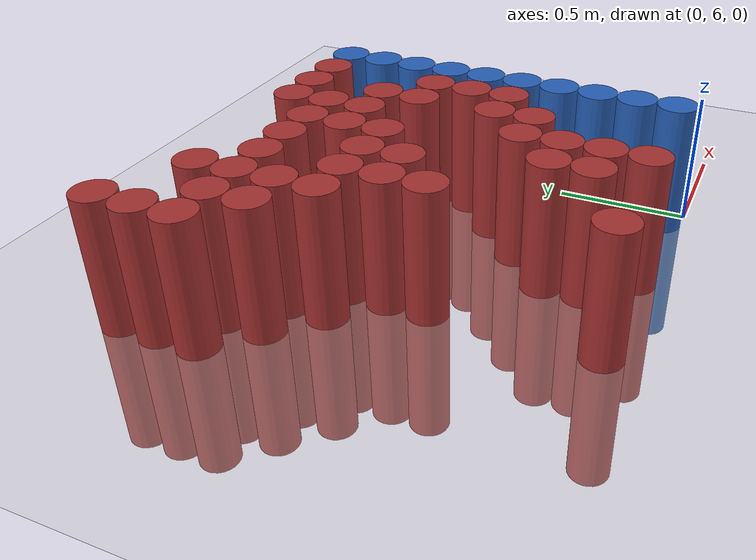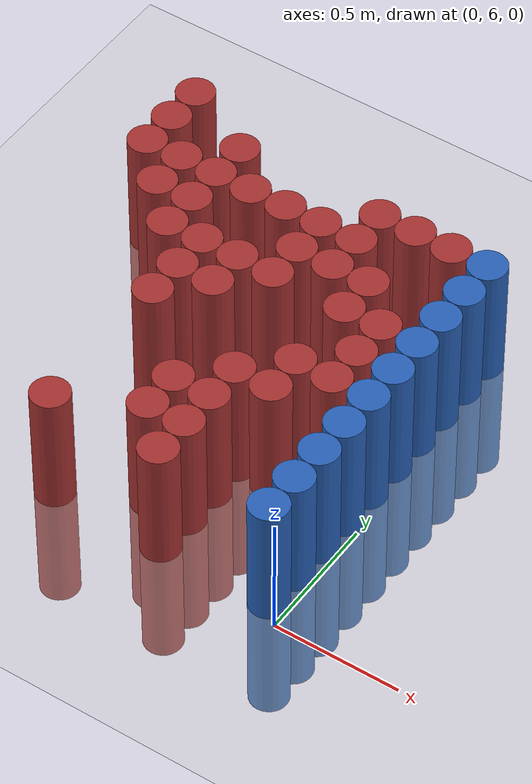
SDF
<sdf version="1.6">
 <world name="default">
  <model name="ground_plane">
   <static>1</static>
   <link name="link">
    <collision name="collision">
     <geometry><plane><normal>0 0 1</normal><size>100 100</size></plane></geometry>
     <surface><friction><ode><mu>100</mu><mu2>50</mu2></ode></friction></surface>
    </collision>
    <visual name="visual">
     <cast_shadows>0</cast_shadows>
     <geometry><plane><normal>0 0 1</normal><size>100 100</size></plane></geometry>
     <material>
      <script><uri>file://media/materials/scripts/gazebo.material</uri><name>Gazebo/Grey</name></script>
     </material>
    </visual>
   </link>
  </model>
  <model name="unit_cylinder_226">
   <static>1</static>
   <pose>-1.425000 7.275000 0.000000 0.000000 0.000000 0.000000</pose>
   <link name="link">
    <inertial>
     <mass>1</mass>
     <inertia><ixx>0.145833</ixx><ixy>0</ixy><ixz>0</ixz><iyy>0.145833</iyy><iyz>0</iyz><izz>0.125</izz></inertia>
    </inertial>
    <collision name="collision">
     <geometry><cylinder><radius>0.075000</radius><length>1</length></cylinder></geometry>
    </collision>
    <visual name="visual">
     <geometry><cylinder><radius>0.075000</radius><length>1</length></cylinder></geometry>
     <material>
      <ambient>0.648000 0.192000 0.192000 1</ambient>
      <diffuse>0.648000 0.192000 0.192000 1</diffuse>
     </material>
     <material>
      <script><name>Gazebo/Grey</name><uri>file://media/materials/scripts/gazebo.material</uri></script>
     </material>
    </visual>
   </link>
  </model>
  <model name="unit_cylinder_227">
   <static>1</static>
   <pose>-1.425000 7.425000 0.000000 0.000000 0.000000 0.000000</pose>
   <link name="link">
    <inertial>
     <mass>1</mass>
     <inertia><ixx>0.145833</ixx><ixy>0</ixy><ixz>0</ixz><iyy>0.145833</iyy><iyz>0</iyz><izz>0.125</izz></inertia>
    </inertial>
    <collision name="collision">
     <geometry><cylinder><radius>0.075000</radius><length>1</length></cylinder></geometry>
    </collision>
    <visual name="visual">
     <geometry><cylinder><radius>0.075000</radius><length>1</length></cylinder></geometry>
     <material>
      <ambient>0.648000 0.192000 0.192000 1</ambient>
      <diffuse>0.648000 0.192000 0.192000 1</diffuse>
     </material>
     <material>
      <script><name>Gazebo/Grey</name><uri>file://media/materials/scripts/gazebo.material</uri></script>
     </material>
    </visual>
   </link>
  </model>
  <model name="unit_cylinder_228">
   <static>1</static>
   <pose>-1.425000 7.575000 0.000000 0.000000 0.000000 0.000000</pose>
   <link name="link">
    <inertial>
     <mass>1</mass>
     <inertia><ixx>0.145833</ixx><ixy>0</ixy><ixz>0</ixz><iyy>0.145833</iyy><iyz>0</iyz><izz>0.125</izz></inertia>
    </inertial>
    <collision name="collision">
     <geometry><cylinder><radius>0.075000</radius><length>1</length></cylinder></geometry>
    </collision>
    <visual name="visual">
     <geometry><cylinder><radius>0.075000</radius><length>1</length></cylinder></geometry>
     <material>
      <ambient>0.648000 0.192000 0.192000 1</ambient>
      <diffuse>0.648000 0.192000 0.192000 1</diffuse>
     </material>
     <material>
      <script><name>Gazebo/Grey</name><uri>file://media/materials/scripts/gazebo.material</uri></script>
     </material>
    </visual>
   </link>
  </model>
  <model name="unit_cylinder_236">
   <static>1</static>
   <pose>-1.275000 7.125000 0.000000 0.000000 0.000000 0.000000</pose>
   <link name="link">
    <inertial>
     <mass>1</mass>
     <inertia><ixx>0.145833</ixx><ixy>0</ixy><ixz>0</ixz><iyy>0.145833</iyy><iyz>0</iyz><izz>0.125</izz></inertia>
    </inertial>
    <collision name="collision">
     <geometry><cylinder><radius>0.075000</radius><length>1</length></cylinder></geometry>
    </collision>
    <visual name="visual">
     <geometry><cylinder><radius>0.075000</radius><length>1</length></cylinder></geometry>
     <material>
      <ambient>0.648000 0.192000 0.192000 1</ambient>
      <diffuse>0.648000 0.192000 0.192000 1</diffuse>
     </material>
     <material>
      <script><name>Gazebo/Grey</name><uri>file://media/materials/scripts/gazebo.material</uri></script>
     </material>
    </visual>
   </link>
  </model>
  <model name="unit_cylinder_237">
   <static>1</static>
   <pose>-1.275000 7.275000 0.000000 0.000000 0.000000 0.000000</pose>
   <link name="link">
    <inertial>
     <mass>1</mass>
     <inertia><ixx>0.145833</ixx><ixy>0</ixy><ixz>0</ixz><iyy>0.145833</iyy><iyz>0</iyz><izz>0.125</izz></inertia>
    </inertial>
    <collision name="collision">
     <geometry><cylinder><radius>0.075000</radius><length>1</length></cylinder></geometry>
    </collision>
    <visual name="visual">
     <geometry><cylinder><radius>0.075000</radius><length>1</length></cylinder></geometry>
     <material>
      <ambient>0.648000 0.192000 0.192000 1</ambient>
      <diffuse>0.648000 0.192000 0.192000 1</diffuse>
     </material>
     <material>
      <script><name>Gazebo/Grey</name><uri>file://media/materials/scripts/gazebo.material</uri></script>
     </material>
    </visual>
   </link>
  </model>
  <model name="unit_cylinder_247">
   <static>1</static>
   <pose>-1.125000 6.975000 0.000000 0.000000 0.000000 0.000000</pose>
   <link name="link">
    <inertial>
     <mass>1</mass>
     <inertia><ixx>0.145833</ixx><ixy>0</ixy><ixz>0</ixz><iyy>0.145833</iyy><iyz>0</iyz><izz>0.125</izz></inertia>
    </inertial>
    <collision name="collision">
     <geometry><cylinder><radius>0.075000</radius><length>1</length></cylinder></geometry>
    </collision>
    <visual name="visual">
     <geometry><cylinder><radius>0.075000</radius><length>1</length></cylinder></geometry>
     <material>
      <ambient>0.648000 0.192000 0.192000 1</ambient>
      <diffuse>0.648000 0.192000 0.192000 1</diffuse>
     </material>
     <material>
      <script><name>Gazebo/Grey</name><uri>file://media/materials/scripts/gazebo.material</uri></script>
     </material>
    </visual>
   </link>
  </model>
  <model name="unit_cylinder_248">
   <static>1</static>
   <pose>-1.125000 7.125000 0.000000 0.000000 0.000000 0.000000</pose>
   <link name="link">
    <inertial>
     <mass>1</mass>
     <inertia><ixx>0.145833</ixx><ixy>0</ixy><ixz>0</ixz><iyy>0.145833</iyy><iyz>0</iyz><izz>0.125</izz></inertia>
    </inertial>
    <collision name="collision">
     <geometry><cylinder><radius>0.075000</radius><length>1</length></cylinder></geometry>
    </collision>
    <visual name="visual">
     <geometry><cylinder><radius>0.075000</radius><length>1</length></cylinder></geometry>
     <material>
      <ambient>0.648000 0.192000 0.192000 1</ambient>
      <diffuse>0.648000 0.192000 0.192000 1</diffuse>
     </material>
     <material>
      <script><name>Gazebo/Grey</name><uri>file://media/materials/scripts/gazebo.material</uri></script>
     </material>
    </visual>
   </link>
  </model>
  <model name="unit_cylinder_249">
   <static>1</static>
   <pose>-1.125000 7.275000 0.000000 0.000000 0.000000 0.000000</pose>
   <link name="link">
    <inertial>
     <mass>1</mass>
     <inertia><ixx>0.145833</ixx><ixy>0</ixy><ixz>0</ixz><iyy>0.145833</iyy><iyz>0</iyz><izz>0.125</izz></inertia>
    </inertial>
    <collision name="collision">
     <geometry><cylinder><radius>0.075000</radius><length>1</length></cylinder></geometry>
    </collision>
    <visual name="visual">
     <geometry><cylinder><radius>0.075000</radius><length>1</length></cylinder></geometry>
     <material>
      <ambient>0.648000 0.192000 0.192000 1</ambient>
      <diffuse>0.648000 0.192000 0.192000 1</diffuse>
     </material>
     <material>
      <script><name>Gazebo/Grey</name><uri>file://media/materials/scripts/gazebo.material</uri></script>
     </material>
    </visual>
   </link>
  </model>
  <model name="unit_cylinder_250">
   <static>1</static>
   <pose>-1.125000 7.425000 0.000000 0.000000 0.000000 0.000000</pose>
   <link name="link">
    <inertial>
     <mass>1</mass>
     <inertia><ixx>0.145833</ixx><ixy>0</ixy><ixz>0</ixz><iyy>0.145833</iyy><iyz>0</iyz><izz>0.125</izz></inertia>
    </inertial>
    <collision name="collision">
     <geometry><cylinder><radius>0.075000</radius><length>1</length></cylinder></geometry>
    </collision>
    <visual name="visual">
     <geometry><cylinder><radius>0.075000</radius><length>1</length></cylinder></geometry>
     <material>
      <ambient>0.648000 0.192000 0.192000 1</ambient>
      <diffuse>0.648000 0.192000 0.192000 1</diffuse>
     </material>
     <material>
      <script><name>Gazebo/Grey</name><uri>file://media/materials/scripts/gazebo.material</uri></script>
     </material>
    </visual>
   </link>
  </model>
  <model name="unit_cylinder_258">
   <static>1</static>
   <pose>-0.975000 6.075000 0.000000 0.000000 0.000000 0.000000</pose>
   <link name="link">
    <inertial>
     <mass>1</mass>
     <inertia><ixx>0.145833</ixx><ixy>0</ixy><ixz>0</ixz><iyy>0.145833</iyy><iyz>0</iyz><izz>0.125</izz></inertia>
    </inertial>
    <collision name="collision">
     <geometry><cylinder><radius>0.075000</radius><length>1</length></cylinder></geometry>
    </collision>
    <visual name="visual">
     <geometry><cylinder><radius>0.075000</radius><length>1</length></cylinder></geometry>
     <material>
      <ambient>0.648000 0.192000 0.192000 1</ambient>
      <diffuse>0.648000 0.192000 0.192000 1</diffuse>
     </material>
     <material>
      <script><name>Gazebo/Grey</name><uri>file://media/materials/scripts/gazebo.material</uri></script>
     </material>
    </visual>
   </link>
  </model>
  <model name="unit_cylinder_259">
   <static>1</static>
   <pose>-0.975000 6.675000 0.000000 0.000000 0.000000 0.000000</pose>
   <link name="link">
    <inertial>
     <mass>1</mass>
     <inertia><ixx>0.145833</ixx><ixy>0</ixy><ixz>0</ixz><iyy>0.145833</iyy><iyz>0</iyz><izz>0.125</izz></inertia>
    </inertial>
    <collision name="collision">
     <geometry><cylinder><radius>0.075000</radius><length>1</length></cylinder></geometry>
    </collision>
    <visual name="visual">
     <geometry><cylinder><radius>0.075000</radius><length>1</length></cylinder></geometry>
     <material>
      <ambient>0.648000 0.192000 0.192000 1</ambient>
      <diffuse>0.648000 0.192000 0.192000 1</diffuse>
     </material>
     <material>
      <script><name>Gazebo/Grey</name><uri>file://media/materials/scripts/gazebo.material</uri></script>
     </material>
    </visual>
   </link>
  </model>
  <model name="unit_cylinder_260">
   <static>1</static>
   <pose>-0.975000 6.825000 0.000000 0.000000 0.000000 0.000000</pose>
   <link name="link">
    <inertial>
     <mass>1</mass>
     <inertia><ixx>0.145833</ixx><ixy>0</ixy><ixz>0</ixz><iyy>0.145833</iyy><iyz>0</iyz><izz>0.125</izz></inertia>
    </inertial>
    <collision name="collision">
     <geometry><cylinder><radius>0.075000</radius><length>1</length></cylinder></geometry>
    </collision>
    <visual name="visual">
     <geometry><cylinder><radius>0.075000</radius><length>1</length></cylinder></geometry>
     <material>
      <ambient>0.648000 0.192000 0.192000 1</ambient>
      <diffuse>0.648000 0.192000 0.192000 1</diffuse>
     </material>
     <material>
      <script><name>Gazebo/Grey</name><uri>file://media/materials/scripts/gazebo.material</uri></script>
     </material>
    </visual>
   </link>
  </model>
  <model name="unit_cylinder_261">
   <static>1</static>
   <pose>-0.975000 6.975000 0.000000 0.000000 0.000000 0.000000</pose>
   <link name="link">
    <inertial>
     <mass>1</mass>
     <inertia><ixx>0.145833</ixx><ixy>0</ixy><ixz>0</ixz><iyy>0.145833</iyy><iyz>0</iyz><izz>0.125</izz></inertia>
    </inertial>
    <collision name="collision">
     <geometry><cylinder><radius>0.075000</radius><length>1</length></cylinder></geometry>
    </collision>
    <visual name="visual">
     <geometry><cylinder><radius>0.075000</radius><length>1</length></cylinder></geometry>
     <material>
      <ambient>0.648000 0.192000 0.192000 1</ambient>
      <diffuse>0.648000 0.192000 0.192000 1</diffuse>
     </material>
     <material>
      <script><name>Gazebo/Grey</name><uri>file://media/materials/scripts/gazebo.material</uri></script>
     </material>
    </visual>
   </link>
  </model>
  <model name="unit_cylinder_262">
   <static>1</static>
   <pose>-0.975000 7.275000 0.000000 0.000000 0.000000 0.000000</pose>
   <link name="link">
    <inertial>
     <mass>1</mass>
     <inertia><ixx>0.145833</ixx><ixy>0</ixy><ixz>0</ixz><iyy>0.145833</iyy><iyz>0</iyz><izz>0.125</izz></inertia>
    </inertial>
    <collision name="collision">
     <geometry><cylinder><radius>0.075000</radius><length>1</length></cylinder></geometry>
    </collision>
    <visual name="visual">
     <geometry><cylinder><radius>0.075000</radius><length>1</length></cylinder></geometry>
     <material>
      <ambient>0.648000 0.192000 0.192000 1</ambient>
      <diffuse>0.648000 0.192000 0.192000 1</diffuse>
     </material>
     <material>
      <script><name>Gazebo/Grey</name><uri>file://media/materials/scripts/gazebo.material</uri></script>
     </material>
    </visual>
   </link>
  </model>
  <model name="unit_cylinder_267">
   <static>1</static>
   <pose>-0.825000 6.825000 0.000000 0.000000 0.000000 0.000000</pose>
   <link name="link">
    <inertial>
     <mass>1</mass>
     <inertia><ixx>0.145833</ixx><ixy>0</ixy><ixz>0</ixz><iyy>0.145833</iyy><iyz>0</iyz><izz>0.125</izz></inertia>
    </inertial>
    <collision name="collision">
     <geometry><cylinder><radius>0.075000</radius><length>1</length></cylinder></geometry>
    </collision>
    <visual name="visual">
     <geometry><cylinder><radius>0.075000</radius><length>1</length></cylinder></geometry>
     <material>
      <ambient>0.648000 0.192000 0.192000 1</ambient>
      <diffuse>0.648000 0.192000 0.192000 1</diffuse>
     </material>
     <material>
      <script><name>Gazebo/Grey</name><uri>file://media/materials/scripts/gazebo.material</uri></script>
     </material>
    </visual>
   </link>
  </model>
  <model name="unit_cylinder_268">
   <static>1</static>
   <pose>-0.825000 6.975000 0.000000 0.000000 0.000000 0.000000</pose>
   <link name="link">
    <inertial>
     <mass>1</mass>
     <inertia><ixx>0.145833</ixx><ixy>0</ixy><ixz>0</ixz><iyy>0.145833</iyy><iyz>0</iyz><izz>0.125</izz></inertia>
    </inertial>
    <collision name="collision">
     <geometry><cylinder><radius>0.075000</radius><length>1</length></cylinder></geometry>
    </collision>
    <visual name="visual">
     <geometry><cylinder><radius>0.075000</radius><length>1</length></cylinder></geometry>
     <material>
      <ambient>0.648000 0.192000 0.192000 1</ambient>
      <diffuse>0.648000 0.192000 0.192000 1</diffuse>
     </material>
     <material>
      <script><name>Gazebo/Grey</name><uri>file://media/materials/scripts/gazebo.material</uri></script>
     </material>
    </visual>
   </link>
  </model>
  <model name="unit_cylinder_269">
   <static>1</static>
   <pose>-0.825000 7.275000 0.000000 0.000000 0.000000 0.000000</pose>
   <link name="link">
    <inertial>
     <mass>1</mass>
     <inertia><ixx>0.145833</ixx><ixy>0</ixy><ixz>0</ixz><iyy>0.145833</iyy><iyz>0</iyz><izz>0.125</izz></inertia>
    </inertial>
    <collision name="collision">
     <geometry><cylinder><radius>0.075000</radius><length>1</length></cylinder></geometry>
    </collision>
    <visual name="visual">
     <geometry><cylinder><radius>0.075000</radius><length>1</length></cylinder></geometry>
     <material>
      <ambient>0.648000 0.192000 0.192000 1</ambient>
      <diffuse>0.648000 0.192000 0.192000 1</diffuse>
     </material>
     <material>
      <script><name>Gazebo/Grey</name><uri>file://media/materials/scripts/gazebo.material</uri></script>
     </material>
    </visual>
   </link>
  </model>
  <model name="unit_cylinder_273">
   <static>1</static>
   <pose>-0.675000 6.225000 0.000000 0.000000 0.000000 0.000000</pose>
   <link name="link">
    <inertial>
     <mass>1</mass>
     <inertia><ixx>0.145833</ixx><ixy>0</ixy><ixz>0</ixz><iyy>0.145833</iyy><iyz>0</iyz><izz>0.125</izz></inertia>
    </inertial>
    <collision name="collision">
     <geometry><cylinder><radius>0.075000</radius><length>1</length></cylinder></geometry>
    </collision>
    <visual name="visual">
     <geometry><cylinder><radius>0.075000</radius><length>1</length></cylinder></geometry>
     <material>
      <ambient>0.648000 0.192000 0.192000 1</ambient>
      <diffuse>0.648000 0.192000 0.192000 1</diffuse>
     </material>
     <material>
      <script><name>Gazebo/Grey</name><uri>file://media/materials/scripts/gazebo.material</uri></script>
     </material>
    </visual>
   </link>
  </model>
  <model name="unit_cylinder_274">
   <static>1</static>
   <pose>-0.675000 6.375000 0.000000 0.000000 0.000000 0.000000</pose>
   <link name="link">
    <inertial>
     <mass>1</mass>
     <inertia><ixx>0.145833</ixx><ixy>0</ixy><ixz>0</ixz><iyy>0.145833</iyy><iyz>0</iyz><izz>0.125</izz></inertia>
    </inertial>
    <collision name="collision">
     <geometry><cylinder><radius>0.075000</radius><length>1</length></cylinder></geometry>
    </collision>
    <visual name="visual">
     <geometry><cylinder><radius>0.075000</radius><length>1</length></cylinder></geometry>
     <material>
      <ambient>0.648000 0.192000 0.192000 1</ambient>
      <diffuse>0.648000 0.192000 0.192000 1</diffuse>
     </material>
     <material>
      <script><name>Gazebo/Grey</name><uri>file://media/materials/scripts/gazebo.material</uri></script>
     </material>
    </visual>
   </link>
  </model>
  <model name="unit_cylinder_275">
   <static>1</static>
   <pose>-0.675000 6.975000 0.000000 0.000000 0.000000 0.000000</pose>
   <link name="link">
    <inertial>
     <mass>1</mass>
     <inertia><ixx>0.145833</ixx><ixy>0</ixy><ixz>0</ixz><iyy>0.145833</iyy><iyz>0</iyz><izz>0.125</izz></inertia>
    </inertial>
    <collision name="collision">
     <geometry><cylinder><radius>0.075000</radius><length>1</length></cylinder></geometry>
    </collision>
    <visual name="visual">
     <geometry><cylinder><radius>0.075000</radius><length>1</length></cylinder></geometry>
     <material>
      <ambient>0.648000 0.192000 0.192000 1</ambient>
      <diffuse>0.648000 0.192000 0.192000 1</diffuse>
     </material>
     <material>
      <script><name>Gazebo/Grey</name><uri>file://media/materials/scripts/gazebo.material</uri></script>
     </material>
    </visual>
   </link>
  </model>
  <model name="unit_cylinder_276">
   <static>1</static>
   <pose>-0.675000 7.125000 0.000000 0.000000 0.000000 0.000000</pose>
   <link name="link">
    <inertial>
     <mass>1</mass>
     <inertia><ixx>0.145833</ixx><ixy>0</ixy><ixz>0</ixz><iyy>0.145833</iyy><iyz>0</iyz><izz>0.125</izz></inertia>
    </inertial>
    <collision name="collision">
     <geometry><cylinder><radius>0.075000</radius><length>1</length></cylinder></geometry>
    </collision>
    <visual name="visual">
     <geometry><cylinder><radius>0.075000</radius><length>1</length></cylinder></geometry>
     <material>
      <ambient>0.648000 0.192000 0.192000 1</ambient>
      <diffuse>0.648000 0.192000 0.192000 1</diffuse>
     </material>
     <material>
      <script><name>Gazebo/Grey</name><uri>file://media/materials/scripts/gazebo.material</uri></script>
     </material>
    </visual>
   </link>
  </model>
  <model name="unit_cylinder_277">
   <static>1</static>
   <pose>-0.675000 7.275000 0.000000 0.000000 0.000000 0.000000</pose>
   <link name="link">
    <inertial>
     <mass>1</mass>
     <inertia><ixx>0.145833</ixx><ixy>0</ixy><ixz>0</ixz><iyy>0.145833</iyy><iyz>0</iyz><izz>0.125</izz></inertia>
    </inertial>
    <collision name="collision">
     <geometry><cylinder><radius>0.075000</radius><length>1</length></cylinder></geometry>
    </collision>
    <visual name="visual">
     <geometry><cylinder><radius>0.075000</radius><length>1</length></cylinder></geometry>
     <material>
      <ambient>0.648000 0.192000 0.192000 1</ambient>
      <diffuse>0.648000 0.192000 0.192000 1</diffuse>
     </material>
     <material>
      <script><name>Gazebo/Grey</name><uri>file://media/materials/scripts/gazebo.material</uri></script>
     </material>
    </visual>
   </link>
  </model>
  <model name="unit_cylinder_282">
   <static>1</static>
   <pose>-0.525000 6.075000 0.000000 0.000000 0.000000 0.000000</pose>
   <link name="link">
    <inertial>
     <mass>1</mass>
     <inertia><ixx>0.145833</ixx><ixy>0</ixy><ixz>0</ixz><iyy>0.145833</iyy><iyz>0</iyz><izz>0.125</izz></inertia>
    </inertial>
    <collision name="collision">
     <geometry><cylinder><radius>0.075000</radius><length>1</length></cylinder></geometry>
    </collision>
    <visual name="visual">
     <geometry><cylinder><radius>0.075000</radius><length>1</length></cylinder></geometry>
     <material>
      <ambient>0.648000 0.192000 0.192000 1</ambient>
      <diffuse>0.648000 0.192000 0.192000 1</diffuse>
     </material>
     <material>
      <script><name>Gazebo/Grey</name><uri>file://media/materials/scripts/gazebo.material</uri></script>
     </material>
    </visual>
   </link>
  </model>
  <model name="unit_cylinder_283">
   <static>1</static>
   <pose>-0.525000 6.225000 0.000000 0.000000 0.000000 0.000000</pose>
   <link name="link">
    <inertial>
     <mass>1</mass>
     <inertia><ixx>0.145833</ixx><ixy>0</ixy><ixz>0</ixz><iyy>0.145833</iyy><iyz>0</iyz><izz>0.125</izz></inertia>
    </inertial>
    <collision name="collision">
     <geometry><cylinder><radius>0.075000</radius><length>1</length></cylinder></geometry>
    </collision>
    <visual name="visual">
     <geometry><cylinder><radius>0.075000</radius><length>1</length></cylinder></geometry>
     <material>
      <ambient>0.648000 0.192000 0.192000 1</ambient>
      <diffuse>0.648000 0.192000 0.192000 1</diffuse>
     </material>
     <material>
      <script><name>Gazebo/Grey</name><uri>file://media/materials/scripts/gazebo.material</uri></script>
     </material>
    </visual>
   </link>
  </model>
  <model name="unit_cylinder_284">
   <static>1</static>
   <pose>-0.525000 6.375000 0.000000 0.000000 0.000000 0.000000</pose>
   <link name="link">
    <inertial>
     <mass>1</mass>
     <inertia><ixx>0.145833</ixx><ixy>0</ixy><ixz>0</ixz><iyy>0.145833</iyy><iyz>0</iyz><izz>0.125</izz></inertia>
    </inertial>
    <collision name="collision">
     <geometry><cylinder><radius>0.075000</radius><length>1</length></cylinder></geometry>
    </collision>
    <visual name="visual">
     <geometry><cylinder><radius>0.075000</radius><length>1</length></cylinder></geometry>
     <material>
      <ambient>0.648000 0.192000 0.192000 1</ambient>
      <diffuse>0.648000 0.192000 0.192000 1</diffuse>
     </material>
     <material>
      <script><name>Gazebo/Grey</name><uri>file://media/materials/scripts/gazebo.material</uri></script>
     </material>
    </visual>
   </link>
  </model>
  <model name="unit_cylinder_285">
   <static>1</static>
   <pose>-0.525000 6.525000 0.000000 0.000000 0.000000 0.000000</pose>
   <link name="link">
    <inertial>
     <mass>1</mass>
     <inertia><ixx>0.145833</ixx><ixy>0</ixy><ixz>0</ixz><iyy>0.145833</iyy><iyz>0</iyz><izz>0.125</izz></inertia>
    </inertial>
    <collision name="collision">
     <geometry><cylinder><radius>0.075000</radius><length>1</length></cylinder></geometry>
    </collision>
    <visual name="visual">
     <geometry><cylinder><radius>0.075000</radius><length>1</length></cylinder></geometry>
     <material>
      <ambient>0.648000 0.192000 0.192000 1</ambient>
      <diffuse>0.648000 0.192000 0.192000 1</diffuse>
     </material>
     <material>
      <script><name>Gazebo/Grey</name><uri>file://media/materials/scripts/gazebo.material</uri></script>
     </material>
    </visual>
   </link>
  </model>
  <model name="unit_cylinder_286">
   <static>1</static>
   <pose>-0.525000 7.125000 0.000000 0.000000 0.000000 0.000000</pose>
   <link name="link">
    <inertial>
     <mass>1</mass>
     <inertia><ixx>0.145833</ixx><ixy>0</ixy><ixz>0</ixz><iyy>0.145833</iyy><iyz>0</iyz><izz>0.125</izz></inertia>
    </inertial>
    <collision name="collision">
     <geometry><cylinder><radius>0.075000</radius><length>1</length></cylinder></geometry>
    </collision>
    <visual name="visual">
     <geometry><cylinder><radius>0.075000</radius><length>1</length></cylinder></geometry>
     <material>
      <ambient>0.648000 0.192000 0.192000 1</ambient>
      <diffuse>0.648000 0.192000 0.192000 1</diffuse>
     </material>
     <material>
      <script><name>Gazebo/Grey</name><uri>file://media/materials/scripts/gazebo.material</uri></script>
     </material>
    </visual>
   </link>
  </model>
  <model name="unit_cylinder_287">
   <static>1</static>
   <pose>-0.525000 7.275000 0.000000 0.000000 0.000000 0.000000</pose>
   <link name="link">
    <inertial>
     <mass>1</mass>
     <inertia><ixx>0.145833</ixx><ixy>0</ixy><ixz>0</ixz><iyy>0.145833</iyy><iyz>0</iyz><izz>0.125</izz></inertia>
    </inertial>
    <collision name="collision">
     <geometry><cylinder><radius>0.075000</radius><length>1</length></cylinder></geometry>
    </collision>
    <visual name="visual">
     <geometry><cylinder><radius>0.075000</radius><length>1</length></cylinder></geometry>
     <material>
      <ambient>0.648000 0.192000 0.192000 1</ambient>
      <diffuse>0.648000 0.192000 0.192000 1</diffuse>
     </material>
     <material>
      <script><name>Gazebo/Grey</name><uri>file://media/materials/scripts/gazebo.material</uri></script>
     </material>
    </visual>
   </link>
  </model>
  <model name="unit_cylinder_288">
   <static>1</static>
   <pose>-0.525000 7.425000 0.000000 0.000000 0.000000 0.000000</pose>
   <link name="link">
    <inertial>
     <mass>1</mass>
     <inertia><ixx>0.145833</ixx><ixy>0</ixy><ixz>0</ixz><iyy>0.145833</iyy><iyz>0</iyz><izz>0.125</izz></inertia>
    </inertial>
    <collision name="collision">
     <geometry><cylinder><radius>0.075000</radius><length>1</length></cylinder></geometry>
    </collision>
    <visual name="visual">
     <geometry><cylinder><radius>0.075000</radius><length>1</length></cylinder></geometry>
     <material>
      <ambient>0.648000 0.192000 0.192000 1</ambient>
      <diffuse>0.648000 0.192000 0.192000 1</diffuse>
     </material>
     <material>
      <script><name>Gazebo/Grey</name><uri>file://media/materials/scripts/gazebo.material</uri></script>
     </material>
    </visual>
   </link>
  </model>
  <model name="unit_cylinder_290">
   <static>1</static>
   <pose>-0.375000 6.525000 0.000000 0.000000 0.000000 0.000000</pose>
   <link name="link">
    <inertial>
     <mass>1</mass>
     <inertia><ixx>0.145833</ixx><ixy>0</ixy><ixz>0</ixz><iyy>0.145833</iyy><iyz>0</iyz><izz>0.125</izz></inertia>
    </inertial>
    <collision name="collision">
     <geometry><cylinder><radius>0.075000</radius><length>1</length></cylinder></geometry>
    </collision>
    <visual name="visual">
     <geometry><cylinder><radius>0.075000</radius><length>1</length></cylinder></geometry>
     <material>
      <ambient>0.648000 0.192000 0.192000 1</ambient>
      <diffuse>0.648000 0.192000 0.192000 1</diffuse>
     </material>
     <material>
      <script><name>Gazebo/Grey</name><uri>file://media/materials/scripts/gazebo.material</uri></script>
     </material>
    </visual>
   </link>
  </model>
  <model name="unit_cylinder_291">
   <static>1</static>
   <pose>-0.375000 6.675000 0.000000 0.000000 0.000000 0.000000</pose>
   <link name="link">
    <inertial>
     <mass>1</mass>
     <inertia><ixx>0.145833</ixx><ixy>0</ixy><ixz>0</ixz><iyy>0.145833</iyy><iyz>0</iyz><izz>0.125</izz></inertia>
    </inertial>
    <collision name="collision">
     <geometry><cylinder><radius>0.075000</radius><length>1</length></cylinder></geometry>
    </collision>
    <visual name="visual">
     <geometry><cylinder><radius>0.075000</radius><length>1</length></cylinder></geometry>
     <material>
      <ambient>0.648000 0.192000 0.192000 1</ambient>
      <diffuse>0.648000 0.192000 0.192000 1</diffuse>
     </material>
     <material>
      <script><name>Gazebo/Grey</name><uri>file://media/materials/scripts/gazebo.material</uri></script>
     </material>
    </visual>
   </link>
  </model>
  <model name="unit_cylinder_292">
   <static>1</static>
   <pose>-0.375000 6.975000 0.000000 0.000000 0.000000 0.000000</pose>
   <link name="link">
    <inertial>
     <mass>1</mass>
     <inertia><ixx>0.145833</ixx><ixy>0</ixy><ixz>0</ixz><iyy>0.145833</iyy><iyz>0</iyz><izz>0.125</izz></inertia>
    </inertial>
    <collision name="collision">
     <geometry><cylinder><radius>0.075000</radius><length>1</length></cylinder></geometry>
    </collision>
    <visual name="visual">
     <geometry><cylinder><radius>0.075000</radius><length>1</length></cylinder></geometry>
     <material>
      <ambient>0.648000 0.192000 0.192000 1</ambient>
      <diffuse>0.648000 0.192000 0.192000 1</diffuse>
     </material>
     <material>
      <script><name>Gazebo/Grey</name><uri>file://media/materials/scripts/gazebo.material</uri></script>
     </material>
    </visual>
   </link>
  </model>
  <model name="unit_cylinder_293">
   <static>1</static>
   <pose>-0.375000 7.125000 0.000000 0.000000 0.000000 0.000000</pose>
   <link name="link">
    <inertial>
     <mass>1</mass>
     <inertia><ixx>0.145833</ixx><ixy>0</ixy><ixz>0</ixz><iyy>0.145833</iyy><iyz>0</iyz><izz>0.125</izz></inertia>
    </inertial>
    <collision name="collision">
     <geometry><cylinder><radius>0.075000</radius><length>1</length></cylinder></geometry>
    </collision>
    <visual name="visual">
     <geometry><cylinder><radius>0.075000</radius><length>1</length></cylinder></geometry>
     <material>
      <ambient>0.648000 0.192000 0.192000 1</ambient>
      <diffuse>0.648000 0.192000 0.192000 1</diffuse>
     </material>
     <material>
      <script><name>Gazebo/Grey</name><uri>file://media/materials/scripts/gazebo.material</uri></script>
     </material>
    </visual>
   </link>
  </model>
  <model name="unit_cylinder_294">
   <static>1</static>
   <pose>-0.375000 7.425000 0.000000 0.000000 0.000000 0.000000</pose>
   <link name="link">
    <inertial>
     <mass>1</mass>
     <inertia><ixx>0.145833</ixx><ixy>0</ixy><ixz>0</ixz><iyy>0.145833</iyy><iyz>0</iyz><izz>0.125</izz></inertia>
    </inertial>
    <collision name="collision">
     <geometry><cylinder><radius>0.075000</radius><length>1</length></cylinder></geometry>
    </collision>
    <visual name="visual">
     <geometry><cylinder><radius>0.075000</radius><length>1</length></cylinder></geometry>
     <material>
      <ambient>0.648000 0.192000 0.192000 1</ambient>
      <diffuse>0.648000 0.192000 0.192000 1</diffuse>
     </material>
     <material>
      <script><name>Gazebo/Grey</name><uri>file://media/materials/scripts/gazebo.material</uri></script>
     </material>
    </visual>
   </link>
  </model>
  <model name="unit_cylinder_298">
   <static>1</static>
   <pose>-0.225000 6.675000 0.000000 0.000000 0.000000 0.000000</pose>
   <link name="link">
    <inertial>
     <mass>1</mass>
     <inertia><ixx>0.145833</ixx><ixy>0</ixy><ixz>0</ixz><iyy>0.145833</iyy><iyz>0</iyz><izz>0.125</izz></inertia>
    </inertial>
    <collision name="collision">
     <geometry><cylinder><radius>0.075000</radius><length>1</length></cylinder></geometry>
    </collision>
    <visual name="visual">
     <geometry><cylinder><radius>0.075000</radius><length>1</length></cylinder></geometry>
     <material>
      <ambient>0.648000 0.192000 0.192000 1</ambient>
      <diffuse>0.648000 0.192000 0.192000 1</diffuse>
     </material>
     <material>
      <script><name>Gazebo/Grey</name><uri>file://media/materials/scripts/gazebo.material</uri></script>
     </material>
    </visual>
   </link>
  </model>
  <model name="unit_cylinder_299">
   <static>1</static>
   <pose>-0.225000 6.825000 0.000000 0.000000 0.000000 0.000000</pose>
   <link name="link">
    <inertial>
     <mass>1</mass>
     <inertia><ixx>0.145833</ixx><ixy>0</ixy><ixz>0</ixz><iyy>0.145833</iyy><iyz>0</iyz><izz>0.125</izz></inertia>
    </inertial>
    <collision name="collision">
     <geometry><cylinder><radius>0.075000</radius><length>1</length></cylinder></geometry>
    </collision>
    <visual name="visual">
     <geometry><cylinder><radius>0.075000</radius><length>1</length></cylinder></geometry>
     <material>
      <ambient>0.648000 0.192000 0.192000 1</ambient>
      <diffuse>0.648000 0.192000 0.192000 1</diffuse>
     </material>
     <material>
      <script><name>Gazebo/Grey</name><uri>file://media/materials/scripts/gazebo.material</uri></script>
     </material>
    </visual>
   </link>
  </model>
  <model name="unit_cylinder_300">
   <static>1</static>
   <pose>-0.225000 6.975000 0.000000 0.000000 0.000000 0.000000</pose>
   <link name="link">
    <inertial>
     <mass>1</mass>
     <inertia><ixx>0.145833</ixx><ixy>0</ixy><ixz>0</ixz><iyy>0.145833</iyy><iyz>0</iyz><izz>0.125</izz></inertia>
    </inertial>
    <collision name="collision">
     <geometry><cylinder><radius>0.075000</radius><length>1</length></cylinder></geometry>
    </collision>
    <visual name="visual">
     <geometry><cylinder><radius>0.075000</radius><length>1</length></cylinder></geometry>
     <material>
      <ambient>0.648000 0.192000 0.192000 1</ambient>
      <diffuse>0.648000 0.192000 0.192000 1</diffuse>
     </material>
     <material>
      <script><name>Gazebo/Grey</name><uri>file://media/materials/scripts/gazebo.material</uri></script>
     </material>
    </visual>
   </link>
  </model>
  <model name="unit_cylinder_301">
   <static>1</static>
   <pose>-0.225000 7.425000 0.000000 0.000000 0.000000 0.000000</pose>
   <link name="link">
    <inertial>
     <mass>1</mass>
     <inertia><ixx>0.145833</ixx><ixy>0</ixy><ixz>0</ixz><iyy>0.145833</iyy><iyz>0</iyz><izz>0.125</izz></inertia>
    </inertial>
    <collision name="collision">
     <geometry><cylinder><radius>0.075000</radius><length>1</length></cylinder></geometry>
    </collision>
    <visual name="visual">
     <geometry><cylinder><radius>0.075000</radius><length>1</length></cylinder></geometry>
     <material>
      <ambient>0.648000 0.192000 0.192000 1</ambient>
      <diffuse>0.648000 0.192000 0.192000 1</diffuse>
     </material>
     <material>
      <script><name>Gazebo/Grey</name><uri>file://media/materials/scripts/gazebo.material</uri></script>
     </material>
    </visual>
   </link>
  </model>
  <model name="unit_cylinder_316">
   <static>1</static>
   <pose>-0.075000 6.075000 0.000000 0.000000 0.000000 0.000000</pose>
   <link name="link">
    <inertial>
     <mass>1</mass>
     <inertia><ixx>0.145833</ixx><ixy>0</ixy><ixz>0</ixz><iyy>0.145833</iyy><iyz>0</iyz><izz>0.125</izz></inertia>
    </inertial>
    <collision name="collision">
     <geometry><cylinder><radius>0.075000</radius><length>1</length></cylinder></geometry>
    </collision>
    <visual name="visual">
     <geometry><cylinder><radius>0.075000</radius><length>1</length></cylinder></geometry>
     <material>
      <ambient>0.152000 0.379000 0.720000 1</ambient>
      <diffuse>0.152000 0.379000 0.720000 1</diffuse>
     </material>
     <material>
      <script><name>Gazebo/Grey</name><uri>file://media/materials/scripts/gazebo.material</uri></script>
     </material>
    </visual>
   </link>
  </model>
  <model name="unit_cylinder_317">
   <static>1</static>
   <pose>-0.075000 6.225000 0.000000 0.000000 0.000000 0.000000</pose>
   <link name="link">
    <inertial>
     <mass>1</mass>
     <inertia><ixx>0.145833</ixx><ixy>0</ixy><ixz>0</ixz><iyy>0.145833</iyy><iyz>0</iyz><izz>0.125</izz></inertia>
    </inertial>
    <collision name="collision">
     <geometry><cylinder><radius>0.075000</radius><length>1</length></cylinder></geometry>
    </collision>
    <visual name="visual">
     <geometry><cylinder><radius>0.075000</radius><length>1</length></cylinder></geometry>
     <material>
      <ambient>0.152000 0.379000 0.720000 1</ambient>
      <diffuse>0.152000 0.379000 0.720000 1</diffuse>
     </material>
     <material>
      <script><name>Gazebo/Grey</name><uri>file://media/materials/scripts/gazebo.material</uri></script>
     </material>
    </visual>
   </link>
  </model>
  <model name="unit_cylinder_318">
   <static>1</static>
   <pose>-0.075000 6.375000 0.000000 0.000000 0.000000 0.000000</pose>
   <link name="link">
    <inertial>
     <mass>1</mass>
     <inertia><ixx>0.145833</ixx><ixy>0</ixy><ixz>0</ixz><iyy>0.145833</iyy><iyz>0</iyz><izz>0.125</izz></inertia>
    </inertial>
    <collision name="collision">
     <geometry><cylinder><radius>0.075000</radius><length>1</length></cylinder></geometry>
    </collision>
    <visual name="visual">
     <geometry><cylinder><radius>0.075000</radius><length>1</length></cylinder></geometry>
     <material>
      <ambient>0.152000 0.379000 0.720000 1</ambient>
      <diffuse>0.152000 0.379000 0.720000 1</diffuse>
     </material>
     <material>
      <script><name>Gazebo/Grey</name><uri>file://media/materials/scripts/gazebo.material</uri></script>
     </material>
    </visual>
   </link>
  </model>
  <model name="unit_cylinder_319">
   <static>1</static>
   <pose>-0.075000 6.525000 0.000000 0.000000 0.000000 0.000000</pose>
   <link name="link">
    <inertial>
     <mass>1</mass>
     <inertia><ixx>0.145833</ixx><ixy>0</ixy><ixz>0</ixz><iyy>0.145833</iyy><iyz>0</iyz><izz>0.125</izz></inertia>
    </inertial>
    <collision name="collision">
     <geometry><cylinder><radius>0.075000</radius><length>1</length></cylinder></geometry>
    </collision>
    <visual name="visual">
     <geometry><cylinder><radius>0.075000</radius><length>1</length></cylinder></geometry>
     <material>
      <ambient>0.152000 0.379000 0.720000 1</ambient>
      <diffuse>0.152000 0.379000 0.720000 1</diffuse>
     </material>
     <material>
      <script><name>Gazebo/Grey</name><uri>file://media/materials/scripts/gazebo.material</uri></script>
     </material>
    </visual>
   </link>
  </model>
  <model name="unit_cylinder_320">
   <static>1</static>
   <pose>-0.075000 6.675000 0.000000 0.000000 0.000000 0.000000</pose>
   <link name="link">
    <inertial>
     <mass>1</mass>
     <inertia><ixx>0.145833</ixx><ixy>0</ixy><ixz>0</ixz><iyy>0.145833</iyy><iyz>0</iyz><izz>0.125</izz></inertia>
    </inertial>
    <collision name="collision">
     <geometry><cylinder><radius>0.075000</radius><length>1</length></cylinder></geometry>
    </collision>
    <visual name="visual">
     <geometry><cylinder><radius>0.075000</radius><length>1</length></cylinder></geometry>
     <material>
      <ambient>0.152000 0.379000 0.720000 1</ambient>
      <diffuse>0.152000 0.379000 0.720000 1</diffuse>
     </material>
     <material>
      <script><name>Gazebo/Grey</name><uri>file://media/materials/scripts/gazebo.material</uri></script>
     </material>
    </visual>
   </link>
  </model>
  <model name="unit_cylinder_321">
   <static>1</static>
   <pose>-0.075000 6.825000 0.000000 0.000000 0.000000 0.000000</pose>
   <link name="link">
    <inertial>
     <mass>1</mass>
     <inertia><ixx>0.145833</ixx><ixy>0</ixy><ixz>0</ixz><iyy>0.145833</iyy><iyz>0</iyz><izz>0.125</izz></inertia>
    </inertial>
    <collision name="collision">
     <geometry><cylinder><radius>0.075000</radius><length>1</length></cylinder></geometry>
    </collision>
    <visual name="visual">
     <geometry><cylinder><radius>0.075000</radius><length>1</length></cylinder></geometry>
     <material>
      <ambient>0.152000 0.379000 0.720000 1</ambient>
      <diffuse>0.152000 0.379000 0.720000 1</diffuse>
     </material>
     <material>
      <script><name>Gazebo/Grey</name><uri>file://media/materials/scripts/gazebo.material</uri></script>
     </material>
    </visual>
   </link>
  </model>
  <model name="unit_cylinder_322">
   <static>1</static>
   <pose>-0.075000 6.975000 0.000000 0.000000 0.000000 0.000000</pose>
   <link name="link">
    <inertial>
     <mass>1</mass>
     <inertia><ixx>0.145833</ixx><ixy>0</ixy><ixz>0</ixz><iyy>0.145833</iyy><iyz>0</iyz><izz>0.125</izz></inertia>
    </inertial>
    <collision name="collision">
     <geometry><cylinder><radius>0.075000</radius><length>1</length></cylinder></geometry>
    </collision>
    <visual name="visual">
     <geometry><cylinder><radius>0.075000</radius><length>1</length></cylinder></geometry>
     <material>
      <ambient>0.152000 0.379000 0.720000 1</ambient>
      <diffuse>0.152000 0.379000 0.720000 1</diffuse>
     </material>
     <material>
      <script><name>Gazebo/Grey</name><uri>file://media/materials/scripts/gazebo.material</uri></script>
     </material>
    </visual>
   </link>
  </model>
  <model name="unit_cylinder_323">
   <static>1</static>
   <pose>-0.075000 7.125000 0.000000 0.000000 0.000000 0.000000</pose>
   <link name="link">
    <inertial>
     <mass>1</mass>
     <inertia><ixx>0.145833</ixx><ixy>0</ixy><ixz>0</ixz><iyy>0.145833</iyy><iyz>0</iyz><izz>0.125</izz></inertia>
    </inertial>
    <collision name="collision">
     <geometry><cylinder><radius>0.075000</radius><length>1</length></cylinder></geometry>
    </collision>
    <visual name="visual">
     <geometry><cylinder><radius>0.075000</radius><length>1</length></cylinder></geometry>
     <material>
      <ambient>0.152000 0.379000 0.720000 1</ambient>
      <diffuse>0.152000 0.379000 0.720000 1</diffuse>
     </material>
     <material>
      <script><name>Gazebo/Grey</name><uri>file://media/materials/scripts/gazebo.material</uri></script>
     </material>
    </visual>
   </link>
  </model>
  <model name="unit_cylinder_324">
   <static>1</static>
   <pose>-0.075000 7.275000 0.000000 0.000000 0.000000 0.000000</pose>
   <link name="link">
    <inertial>
     <mass>1</mass>
     <inertia><ixx>0.145833</ixx><ixy>0</ixy><ixz>0</ixz><iyy>0.145833</iyy><iyz>0</iyz><izz>0.125</izz></inertia>
    </inertial>
    <collision name="collision">
     <geometry><cylinder><radius>0.075000</radius><length>1</length></cylinder></geometry>
    </collision>
    <visual name="visual">
     <geometry><cylinder><radius>0.075000</radius><length>1</length></cylinder></geometry>
     <material>
      <ambient>0.152000 0.379000 0.720000 1</ambient>
      <diffuse>0.152000 0.379000 0.720000 1</diffuse>
     </material>
     <material>
      <script><name>Gazebo/Grey</name><uri>file://media/materials/scripts/gazebo.material</uri></script>
     </material>
    </visual>
   </link>
  </model>
  <model name="unit_cylinder_325">
   <static>1</static>
   <pose>-0.075000 7.425000 0.000000 0.000000 0.000000 0.000000</pose>
   <link name="link">
    <inertial>
     <mass>1</mass>
     <inertia><ixx>0.145833</ixx><ixy>0</ixy><ixz>0</ixz><iyy>0.145833</iyy><iyz>0</iyz><izz>0.125</izz></inertia>
    </inertial>
    <collision name="collision">
     <geometry><cylinder><radius>0.075000</radius><length>1</length></cylinder></geometry>
    </collision>
    <visual name="visual">
     <geometry><cylinder><radius>0.075000</radius><length>1</length></cylinder></geometry>
     <material>
      <ambient>0.152000 0.379000 0.720000 1</ambient>
      <diffuse>0.152000 0.379000 0.720000 1</diffuse>
     </material>
     <material>
      <script><name>Gazebo/Grey</name><uri>file://media/materials/scripts/gazebo.material</uri></script>
     </material>
    </visual>
   </link>
  </model>
 </world>
</sdf>
